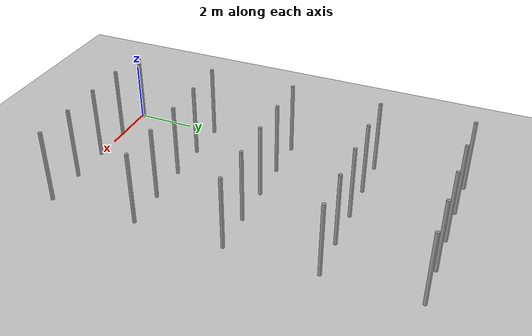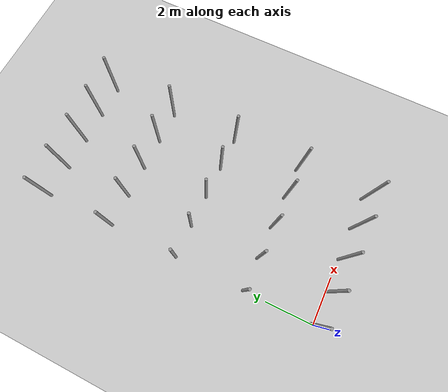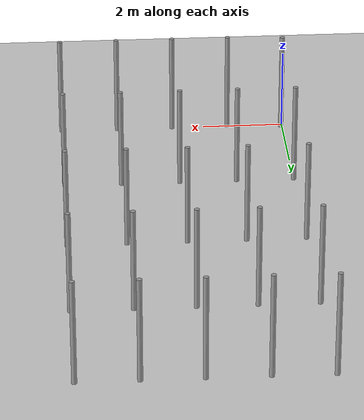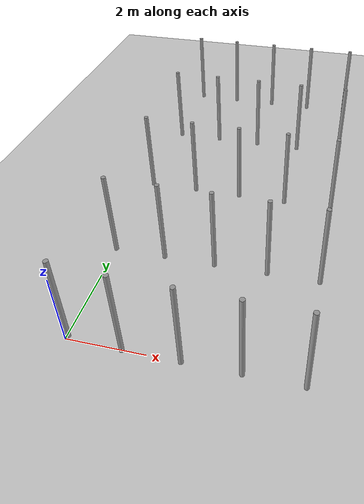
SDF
<sdf version="1.6">
 <world name="default">
  <light name="sun" type="directional">
   <pose>0 0 10 0 -0 0</pose>
   <diffuse>0.8 0.8 0.8 1</diffuse>
   <specular>0.1 0.1 0.1 1</specular>
   <attenuation>
    <range>1000</range>
    <constant>0.9</constant>
    <linear>0.01</linear>
    <quadratic>0.001</quadratic>
   </attenuation>
   <direction>-0.5 0.5 -1</direction>
  </light>
  <model name="ground_plane">
   <static>1</static>
   <link name="link">
    <collision name="collision">
     <geometry><plane><normal>0 0 1</normal><size>100 100</size></plane></geometry>
     <surface><friction><ode><mu>100</mu><mu2>50</mu2></ode></friction></surface>
    </collision>
    <visual name="visual">
     <cast_shadows>0</cast_shadows>
     <geometry><plane><normal>0 0 1</normal><size>100 100</size></plane></geometry>
     <material>
      <script><uri>file://media/materials/scripts/gazebo.material</uri><name>Gazebo/Grey</name></script>
     </material>
    </visual>
   </link>
  </model>
  <gravity>0 0 -9.8</gravity>
  <magnetic_field>6e-06 2.3e-05 -4.2e-05</magnetic_field>
  <atmosphere type="adiabatic"/>
  <physics name="default_physics" default="0" type="ode">
   <max_step_size>0.001</max_step_size>
   <real_time_factor>1</real_time_factor>
   <real_time_update_rate>1000</real_time_update_rate>
  </physics>
  <scene><ambient>0.4 0.4 0.4 1</ambient><background>0.7 0.7 0.7 1</background><shadows>1</shadows></scene>
  <spherical_coordinates>
   <surface_model>EARTH_WGS84</surface_model>
   <latitude_deg>0</latitude_deg>
   <longitude_deg>0</longitude_deg>
   <elevation>0</elevation>
   <heading_deg>0</heading_deg>
  </spherical_coordinates>
  <model name="pole_8">
   <link name="link_0">
    <inertial>
     <mass>0.0364582</mass>
     <inertia>
      <ixx>0.00312124</ixx>
      <ixy>0</ixy>
      <ixz>0</ixz>
      <iyy>0.00312124</iyy>
      <iyz>0</iyz>
      <izz>0.00016615</izz>
     </inertia>
    </inertial>
    <visual name="visual">
     <geometry><cylinder><radius>0.06</radius><length>2.5</length></cylinder></geometry>
     <material>
      <lighting>1</lighting>
      <script><uri>file://media/materials/scripts/gazebo.material</uri><name>Gazebo/Grey</name></script>
      <ambient>0.3 0.3 0.3 1</ambient>
      <diffuse>0.7 0.7 0.7 1</diffuse>
      <specular>0.01 0.01 0.01 1</specular>
      <emissive>0 0 0 1</emissive>
      <shader type="vertex"><normal_map>__default__</normal_map></shader>
     </material>
    </visual>
    <collision name="collision">
     <geometry><cylinder><radius>0.06</radius><length>2.5</length></cylinder></geometry>
     <surface>
      <friction>
       <ode><mu>1</mu><mu2>1</mu2><fdir1>0 0 0</fdir1><slip1>0</slip1><slip2>0</slip2></ode>
       <torsional>
        <coefficient>1</coefficient>
        <patch_radius>0</patch_radius>
        <surface_radius>0</surface_radius>
        <use_patch_radius>1</use_patch_radius>
        <ode><slip>0</slip></ode>
       </torsional>
      </friction>
      <bounce><restitution_coefficient>0</restitution_coefficient><threshold>1e+06</threshold></bounce>
      <contact>
       <collide_without_contact>0</collide_without_contact>
       <collide_without_contact_bitmask>1</collide_without_contact_bitmask>
       <collide_bitmask>1</collide_bitmask>
       <ode>
        <soft_cfm>0</soft_cfm>
        <soft_erp>0.2</soft_erp>
        <kp>1e+13</kp>
        <kd>1</kd>
        <max_vel>0.01</max_vel>
        <min_depth>0</min_depth>
       </ode>
       <bullet>
        <split_impulse>1</split_impulse>
        <split_impulse_penetration_threshold>-0.01</split_impulse_penetration_threshold>
        <soft_cfm>0</soft_cfm>
        <soft_erp>0.2</soft_erp>
        <kp>1e+13</kp>
        <kd>1</kd>
       </bullet>
      </contact>
     </surface>
    </collision>
   </link>
   <static>0</static>
   <pose>1.4042 0.00133 1.25 -1e-06 -0 -0.016872</pose>
  </model>
  <model name="pole_9">
   <link name="link_0">
    <inertial>
     <mass>0.0364582</mass>
     <inertia>
      <ixx>0.00312124</ixx>
      <ixy>0</ixy>
      <ixz>0</ixz>
      <iyy>0.00312124</iyy>
      <iyz>0</iyz>
      <izz>0.00016615</izz>
     </inertia>
    </inertial>
    <visual name="visual">
     <geometry><cylinder><radius>0.06</radius><length>2.5</length></cylinder></geometry>
     <material>
      <lighting>1</lighting>
      <script><uri>file://media/materials/scripts/gazebo.material</uri><name>Gazebo/Grey</name></script>
      <ambient>0.3 0.3 0.3 1</ambient>
      <diffuse>0.7 0.7 0.7 1</diffuse>
      <specular>0.01 0.01 0.01 1</specular>
      <emissive>0 0 0 1</emissive>
      <shader type="vertex"><normal_map>__default__</normal_map></shader>
     </material>
    </visual>
    <collision name="collision">
     <geometry><cylinder><radius>0.06</radius><length>2.5</length></cylinder></geometry>
     <surface>
      <friction>
       <ode><mu>1</mu><mu2>1</mu2><fdir1>0 0 0</fdir1><slip1>0</slip1><slip2>0</slip2></ode>
       <torsional>
        <coefficient>1</coefficient>
        <patch_radius>0</patch_radius>
        <surface_radius>0</surface_radius>
        <use_patch_radius>1</use_patch_radius>
        <ode><slip>0</slip></ode>
       </torsional>
      </friction>
      <bounce><restitution_coefficient>0</restitution_coefficient><threshold>1e+06</threshold></bounce>
      <contact>
       <collide_without_contact>0</collide_without_contact>
       <collide_without_contact_bitmask>1</collide_without_contact_bitmask>
       <collide_bitmask>1</collide_bitmask>
       <ode>
        <soft_cfm>0</soft_cfm>
        <soft_erp>0.2</soft_erp>
        <kp>1e+13</kp>
        <kd>1</kd>
        <max_vel>0.01</max_vel>
        <min_depth>0</min_depth>
       </ode>
       <bullet>
        <split_impulse>1</split_impulse>
        <split_impulse_penetration_threshold>-0.01</split_impulse_penetration_threshold>
        <soft_cfm>0</soft_cfm>
        <soft_erp>0.2</soft_erp>
        <kp>1e+13</kp>
        <kd>1</kd>
       </bullet>
      </contact>
     </surface>
    </collision>
   </link>
   <static>0</static>
   <pose>2.808 0.001462 1.25 -0 -1e-06 -0.034867</pose>
  </model>
  <model name="pole_10">
   <link name="link_0">
    <inertial>
     <mass>0.0364582</mass>
     <inertia>
      <ixx>0.00312124</ixx>
      <ixy>0</ixy>
      <ixz>0</ixz>
      <iyy>0.00312124</iyy>
      <iyz>0</iyz>
      <izz>0.00016615</izz>
     </inertia>
    </inertial>
    <visual name="visual">
     <geometry><cylinder><radius>0.06</radius><length>2.5</length></cylinder></geometry>
     <material>
      <lighting>1</lighting>
      <script><uri>file://media/materials/scripts/gazebo.material</uri><name>Gazebo/Grey</name></script>
      <ambient>0.3 0.3 0.3 1</ambient>
      <diffuse>0.7 0.7 0.7 1</diffuse>
      <specular>0.01 0.01 0.01 1</specular>
      <emissive>0 0 0 1</emissive>
      <shader type="vertex"><normal_map>__default__</normal_map></shader>
     </material>
    </visual>
    <collision name="collision">
     <geometry><cylinder><radius>0.06</radius><length>2.5</length></cylinder></geometry>
     <surface>
      <friction>
       <ode><mu>1</mu><mu2>1</mu2><fdir1>0 0 0</fdir1><slip1>0</slip1><slip2>0</slip2></ode>
       <torsional>
        <coefficient>1</coefficient>
        <patch_radius>0</patch_radius>
        <surface_radius>0</surface_radius>
        <use_patch_radius>1</use_patch_radius>
        <ode><slip>0</slip></ode>
       </torsional>
      </friction>
      <bounce><restitution_coefficient>0</restitution_coefficient><threshold>1e+06</threshold></bounce>
      <contact>
       <collide_without_contact>0</collide_without_contact>
       <collide_without_contact_bitmask>1</collide_without_contact_bitmask>
       <collide_bitmask>1</collide_bitmask>
       <ode>
        <soft_cfm>0</soft_cfm>
        <soft_erp>0.2</soft_erp>
        <kp>1e+13</kp>
        <kd>1</kd>
        <max_vel>0.01</max_vel>
        <min_depth>0</min_depth>
       </ode>
       <bullet>
        <split_impulse>1</split_impulse>
        <split_impulse_penetration_threshold>-0.01</split_impulse_penetration_threshold>
        <soft_cfm>0</soft_cfm>
        <soft_erp>0.2</soft_erp>
        <kp>1e+13</kp>
        <kd>1</kd>
       </bullet>
      </contact>
     </surface>
    </collision>
   </link>
   <static>0</static>
   <pose>4.20395 0.001436 1.24999 -1e-06 1e-06 -0.019667</pose>
  </model>
  <model name="pole_11">
   <link name="link_0">
    <inertial>
     <mass>0.0364582</mass>
     <inertia>
      <ixx>0.00312124</ixx>
      <ixy>0</ixy>
      <ixz>0</ixz>
      <iyy>0.00312124</iyy>
      <iyz>0</iyz>
      <izz>0.00016615</izz>
     </inertia>
    </inertial>
    <visual name="visual">
     <geometry><cylinder><radius>0.06</radius><length>2.5</length></cylinder></geometry>
     <material>
      <lighting>1</lighting>
      <script><uri>file://media/materials/scripts/gazebo.material</uri><name>Gazebo/Grey</name></script>
      <ambient>0.3 0.3 0.3 1</ambient>
      <diffuse>0.7 0.7 0.7 1</diffuse>
      <specular>0.01 0.01 0.01 1</specular>
      <emissive>0 0 0 1</emissive>
      <shader type="vertex"><normal_map>__default__</normal_map></shader>
     </material>
    </visual>
    <collision name="collision">
     <geometry><cylinder><radius>0.06</radius><length>2.5</length></cylinder></geometry>
     <surface>
      <friction>
       <ode><mu>1</mu><mu2>1</mu2><fdir1>0 0 0</fdir1><slip1>0</slip1><slip2>0</slip2></ode>
       <torsional>
        <coefficient>1</coefficient>
        <patch_radius>0</patch_radius>
        <surface_radius>0</surface_radius>
        <use_patch_radius>1</use_patch_radius>
        <ode><slip>0</slip></ode>
       </torsional>
      </friction>
      <bounce><restitution_coefficient>0</restitution_coefficient><threshold>1e+06</threshold></bounce>
      <contact>
       <collide_without_contact>0</collide_without_contact>
       <collide_without_contact_bitmask>1</collide_without_contact_bitmask>
       <collide_bitmask>1</collide_bitmask>
       <ode>
        <soft_cfm>0</soft_cfm>
        <soft_erp>0.2</soft_erp>
        <kp>1e+13</kp>
        <kd>1</kd>
        <max_vel>0.01</max_vel>
        <min_depth>0</min_depth>
       </ode>
       <bullet>
        <split_impulse>1</split_impulse>
        <split_impulse_penetration_threshold>-0.01</split_impulse_penetration_threshold>
        <soft_cfm>0</soft_cfm>
        <soft_erp>0.2</soft_erp>
        <kp>1e+13</kp>
        <kd>1</kd>
       </bullet>
      </contact>
     </surface>
    </collision>
   </link>
   <static>0</static>
   <pose>5.6162 0.001241 1.25 -1e-06 -1e-06 -0.018142</pose>
  </model>
  <model name="pole_11_clone">
   <link name="link_0">
    <inertial>
     <mass>0.0364582</mass>
     <inertia>
      <ixx>0.00312124</ixx>
      <ixy>0</ixy>
      <ixz>0</ixz>
      <iyy>0.00312124</iyy>
      <iyz>0</iyz>
      <izz>0.00016615</izz>
     </inertia>
    </inertial>
    <visual name="visual">
     <geometry><cylinder><radius>0.06</radius><length>2.5</length></cylinder></geometry>
     <material>
      <lighting>1</lighting>
      <script><uri>file://media/materials/scripts/gazebo.material</uri><name>Gazebo/Grey</name></script>
      <ambient>0.3 0.3 0.3 1</ambient>
      <diffuse>0.7 0.7 0.7 1</diffuse>
      <specular>0.01 0.01 0.01 1</specular>
      <emissive>0 0 0 1</emissive>
      <shader type="vertex"><normal_map>__default__</normal_map></shader>
     </material>
    </visual>
    <collision name="collision">
     <geometry><cylinder><radius>0.06</radius><length>2.5</length></cylinder></geometry>
     <surface>
      <friction>
       <ode><mu>1</mu><mu2>1</mu2><fdir1>0 0 0</fdir1><slip1>0</slip1><slip2>0</slip2></ode>
       <torsional>
        <coefficient>1</coefficient>
        <patch_radius>0</patch_radius>
        <surface_radius>0</surface_radius>
        <use_patch_radius>1</use_patch_radius>
        <ode><slip>0</slip></ode>
       </torsional>
      </friction>
      <bounce><restitution_coefficient>0</restitution_coefficient><threshold>1e+06</threshold></bounce>
      <contact>
       <collide_without_contact>0</collide_without_contact>
       <collide_without_contact_bitmask>1</collide_without_contact_bitmask>
       <collide_bitmask>1</collide_bitmask>
       <ode>
        <soft_cfm>0</soft_cfm>
        <soft_erp>0.2</soft_erp>
        <kp>1e+13</kp>
        <kd>1</kd>
        <max_vel>0.01</max_vel>
        <min_depth>0</min_depth>
       </ode>
       <bullet>
        <split_impulse>1</split_impulse>
        <split_impulse_penetration_threshold>-0.01</split_impulse_penetration_threshold>
        <soft_cfm>0</soft_cfm>
        <soft_erp>0.2</soft_erp>
        <kp>1e+13</kp>
        <kd>1</kd>
       </bullet>
      </contact>
     </surface>
    </collision>
   </link>
   <static>0</static>
   <pose>0.000689 2.98366 1.24999 -1e-06 -0 -0.026064</pose>
  </model>
  <model name="pole">
   <link name="link_0">
    <inertial>
     <mass>0.0364582</mass>
     <inertia>
      <ixx>0.00312124</ixx>
      <ixy>0</ixy>
      <ixz>0</ixz>
      <iyy>0.00312124</iyy>
      <iyz>0</iyz>
      <izz>0.00016615</izz>
     </inertia>
    </inertial>
    <visual name="visual">
     <geometry><cylinder><radius>0.06</radius><length>2.5</length></cylinder></geometry>
     <material>
      <lighting>1</lighting>
      <script><uri>file://media/materials/scripts/gazebo.material</uri><name>Gazebo/Grey</name></script>
      <ambient>0.3 0.3 0.3 1</ambient>
      <diffuse>0.7 0.7 0.7 1</diffuse>
      <specular>0.01 0.01 0.01 1</specular>
      <emissive>0 0 0 1</emissive>
      <shader type="vertex"><normal_map>__default__</normal_map></shader>
     </material>
    </visual>
    <collision name="collision">
     <geometry><cylinder><radius>0.06</radius><length>2.5</length></cylinder></geometry>
     <surface>
      <friction>
       <ode><mu>1</mu><mu2>1</mu2><fdir1>0 0 0</fdir1><slip1>0</slip1><slip2>0</slip2></ode>
       <torsional>
        <coefficient>1</coefficient>
        <patch_radius>0</patch_radius>
        <surface_radius>0</surface_radius>
        <use_patch_radius>1</use_patch_radius>
        <ode><slip>0</slip></ode>
       </torsional>
      </friction>
      <bounce><restitution_coefficient>0</restitution_coefficient><threshold>1e+06</threshold></bounce>
      <contact>
       <collide_without_contact>0</collide_without_contact>
       <collide_without_contact_bitmask>1</collide_without_contact_bitmask>
       <collide_bitmask>1</collide_bitmask>
       <ode>
        <soft_cfm>0</soft_cfm>
        <soft_erp>0.2</soft_erp>
        <kp>1e+13</kp>
        <kd>1</kd>
        <max_vel>0.01</max_vel>
        <min_depth>0</min_depth>
       </ode>
       <bullet>
        <split_impulse>1</split_impulse>
        <split_impulse_penetration_threshold>-0.01</split_impulse_penetration_threshold>
        <soft_cfm>0</soft_cfm>
        <soft_erp>0.2</soft_erp>
        <kp>1e+13</kp>
        <kd>1</kd>
       </bullet>
      </contact>
     </surface>
    </collision>
   </link>
   <static>0</static>
   <pose>0.006671 5.96106 1.24999 0 1e-06 -0.013092</pose>
  </model>
  <model name="pole_0">
   <link name="link_0">
    <inertial>
     <mass>0.0364582</mass>
     <inertia>
      <ixx>0.00312124</ixx>
      <ixy>0</ixy>
      <ixz>0</ixz>
      <iyy>0.00312124</iyy>
      <iyz>0</iyz>
      <izz>0.00016615</izz>
     </inertia>
    </inertial>
    <visual name="visual">
     <geometry><cylinder><radius>0.06</radius><length>2.5</length></cylinder></geometry>
     <material>
      <lighting>1</lighting>
      <script><uri>file://media/materials/scripts/gazebo.material</uri><name>Gazebo/Grey</name></script>
      <ambient>0.3 0.3 0.3 1</ambient>
      <diffuse>0.7 0.7 0.7 1</diffuse>
      <specular>0.01 0.01 0.01 1</specular>
      <emissive>0 0 0 1</emissive>
      <shader type="vertex"><normal_map>__default__</normal_map></shader>
     </material>
    </visual>
    <collision name="collision">
     <geometry><cylinder><radius>0.06</radius><length>2.5</length></cylinder></geometry>
     <surface>
      <friction>
       <ode><mu>1</mu><mu2>1</mu2><fdir1>0 0 0</fdir1><slip1>0</slip1><slip2>0</slip2></ode>
       <torsional>
        <coefficient>1</coefficient>
        <patch_radius>0</patch_radius>
        <surface_radius>0</surface_radius>
        <use_patch_radius>1</use_patch_radius>
        <ode><slip>0</slip></ode>
       </torsional>
      </friction>
      <bounce><restitution_coefficient>0</restitution_coefficient><threshold>1e+06</threshold></bounce>
      <contact>
       <collide_without_contact>0</collide_without_contact>
       <collide_without_contact_bitmask>1</collide_without_contact_bitmask>
       <collide_bitmask>1</collide_bitmask>
       <ode>
        <soft_cfm>0</soft_cfm>
        <soft_erp>0.2</soft_erp>
        <kp>1e+13</kp>
        <kd>1</kd>
        <max_vel>0.01</max_vel>
        <min_depth>0</min_depth>
       </ode>
       <bullet>
        <split_impulse>1</split_impulse>
        <split_impulse_penetration_threshold>-0.01</split_impulse_penetration_threshold>
        <soft_cfm>0</soft_cfm>
        <soft_erp>0.2</soft_erp>
        <kp>1e+13</kp>
        <kd>1</kd>
       </bullet>
      </contact>
     </surface>
    </collision>
   </link>
   <static>0</static>
   <pose>0.013472 8.94119 1.24999 0 0 -0.015587</pose>
  </model>
  <model name="pole_1">
   <link name="link_0">
    <inertial>
     <mass>0.0364582</mass>
     <inertia>
      <ixx>0.00312124</ixx>
      <ixy>0</ixy>
      <ixz>0</ixz>
      <iyy>0.00312124</iyy>
      <iyz>0</iyz>
      <izz>0.00016615</izz>
     </inertia>
    </inertial>
    <visual name="visual">
     <geometry><cylinder><radius>0.06</radius><length>2.5</length></cylinder></geometry>
     <material>
      <lighting>1</lighting>
      <script><uri>file://media/materials/scripts/gazebo.material</uri><name>Gazebo/Grey</name></script>
      <ambient>0.3 0.3 0.3 1</ambient>
      <diffuse>0.7 0.7 0.7 1</diffuse>
      <specular>0.01 0.01 0.01 1</specular>
      <emissive>0 0 0 1</emissive>
      <shader type="vertex"><normal_map>__default__</normal_map></shader>
     </material>
    </visual>
    <collision name="collision">
     <geometry><cylinder><radius>0.06</radius><length>2.5</length></cylinder></geometry>
     <surface>
      <friction>
       <ode><mu>1</mu><mu2>1</mu2><fdir1>0 0 0</fdir1><slip1>0</slip1><slip2>0</slip2></ode>
       <torsional>
        <coefficient>1</coefficient>
        <patch_radius>0</patch_radius>
        <surface_radius>0</surface_radius>
        <use_patch_radius>1</use_patch_radius>
        <ode><slip>0</slip></ode>
       </torsional>
      </friction>
      <bounce><restitution_coefficient>0</restitution_coefficient><threshold>1e+06</threshold></bounce>
      <contact>
       <collide_without_contact>0</collide_without_contact>
       <collide_without_contact_bitmask>1</collide_without_contact_bitmask>
       <collide_bitmask>1</collide_bitmask>
       <ode>
        <soft_cfm>0</soft_cfm>
        <soft_erp>0.2</soft_erp>
        <kp>1e+13</kp>
        <kd>1</kd>
        <max_vel>0.01</max_vel>
        <min_depth>0</min_depth>
       </ode>
       <bullet>
        <split_impulse>1</split_impulse>
        <split_impulse_penetration_threshold>-0.01</split_impulse_penetration_threshold>
        <soft_cfm>0</soft_cfm>
        <soft_erp>0.2</soft_erp>
        <kp>1e+13</kp>
        <kd>1</kd>
       </bullet>
      </contact>
     </surface>
    </collision>
   </link>
   <static>0</static>
   <pose>-0.00814 11.9211 1.24999 -1e-06 -2e-06 -0.016232</pose>
  </model>
  <model name="pole_2">
   <link name="link_0">
    <inertial>
     <mass>0.0364582</mass>
     <inertia>
      <ixx>0.00312124</ixx>
      <ixy>0</ixy>
      <ixz>0</ixz>
      <iyy>0.00312124</iyy>
      <iyz>0</iyz>
      <izz>0.00016615</izz>
     </inertia>
    </inertial>
    <visual name="visual">
     <geometry><cylinder><radius>0.06</radius><length>2.5</length></cylinder></geometry>
     <material>
      <lighting>1</lighting>
      <script><uri>file://media/materials/scripts/gazebo.material</uri><name>Gazebo/Grey</name></script>
      <ambient>0.3 0.3 0.3 1</ambient>
      <diffuse>0.7 0.7 0.7 1</diffuse>
      <specular>0.01 0.01 0.01 1</specular>
      <emissive>0 0 0 1</emissive>
      <shader type="vertex"><normal_map>__default__</normal_map></shader>
     </material>
    </visual>
    <collision name="collision">
     <geometry><cylinder><radius>0.06</radius><length>2.5</length></cylinder></geometry>
     <surface>
      <friction>
       <ode><mu>1</mu><mu2>1</mu2><fdir1>0 0 0</fdir1><slip1>0</slip1><slip2>0</slip2></ode>
       <torsional>
        <coefficient>1</coefficient>
        <patch_radius>0</patch_radius>
        <surface_radius>0</surface_radius>
        <use_patch_radius>1</use_patch_radius>
        <ode><slip>0</slip></ode>
       </torsional>
      </friction>
      <bounce><restitution_coefficient>0</restitution_coefficient><threshold>1e+06</threshold></bounce>
      <contact>
       <collide_without_contact>0</collide_without_contact>
       <collide_without_contact_bitmask>1</collide_without_contact_bitmask>
       <collide_bitmask>1</collide_bitmask>
       <ode>
        <soft_cfm>0</soft_cfm>
        <soft_erp>0.2</soft_erp>
        <kp>1e+13</kp>
        <kd>1</kd>
        <max_vel>0.01</max_vel>
        <min_depth>0</min_depth>
       </ode>
       <bullet>
        <split_impulse>1</split_impulse>
        <split_impulse_penetration_threshold>-0.01</split_impulse_penetration_threshold>
        <soft_cfm>0</soft_cfm>
        <soft_erp>0.2</soft_erp>
        <kp>1e+13</kp>
        <kd>1</kd>
       </bullet>
      </contact>
     </surface>
    </collision>
   </link>
   <static>0</static>
   <pose>0.034201 0.09421 1.25 -1e-06 -1e-06 0.046889</pose>
  </model>
  <model name="pole_3">
   <link name="link_0">
    <inertial>
     <mass>0.0364582</mass>
     <inertia>
      <ixx>0.00312124</ixx>
      <ixy>0</ixy>
      <ixz>0</ixz>
      <iyy>0.00312124</iyy>
      <iyz>0</iyz>
      <izz>0.00016615</izz>
     </inertia>
    </inertial>
    <visual name="visual">
     <geometry><cylinder><radius>0.06</radius><length>2.5</length></cylinder></geometry>
     <material>
      <lighting>1</lighting>
      <script><uri>file://media/materials/scripts/gazebo.material</uri><name>Gazebo/Grey</name></script>
      <ambient>0.3 0.3 0.3 1</ambient>
      <diffuse>0.7 0.7 0.7 1</diffuse>
      <specular>0.01 0.01 0.01 1</specular>
      <emissive>0 0 0 1</emissive>
      <shader type="vertex"><normal_map>__default__</normal_map></shader>
     </material>
    </visual>
    <collision name="collision">
     <geometry><cylinder><radius>0.06</radius><length>2.5</length></cylinder></geometry>
     <surface>
      <friction>
       <ode><mu>1</mu><mu2>1</mu2><fdir1>0 0 0</fdir1><slip1>0</slip1><slip2>0</slip2></ode>
       <torsional>
        <coefficient>1</coefficient>
        <patch_radius>0</patch_radius>
        <surface_radius>0</surface_radius>
        <use_patch_radius>1</use_patch_radius>
        <ode><slip>0</slip></ode>
       </torsional>
      </friction>
      <bounce><restitution_coefficient>0</restitution_coefficient><threshold>1e+06</threshold></bounce>
      <contact>
       <collide_without_contact>0</collide_without_contact>
       <collide_without_contact_bitmask>1</collide_without_contact_bitmask>
       <collide_bitmask>1</collide_bitmask>
       <ode>
        <soft_cfm>0</soft_cfm>
        <soft_erp>0.2</soft_erp>
        <kp>1e+13</kp>
        <kd>1</kd>
        <max_vel>0.01</max_vel>
        <min_depth>0</min_depth>
       </ode>
       <bullet>
        <split_impulse>1</split_impulse>
        <split_impulse_penetration_threshold>-0.01</split_impulse_penetration_threshold>
        <soft_cfm>0</soft_cfm>
        <soft_erp>0.2</soft_erp>
        <kp>1e+13</kp>
        <kd>1</kd>
       </bullet>
      </contact>
     </surface>
    </collision>
   </link>
   <static>0</static>
   <pose>1.4047 2.98102 1.24999 0 1e-06 -0.012816</pose>
  </model>
  <model name="pole_5">
   <link name="link_0">
    <inertial>
     <mass>0.0364582</mass>
     <inertia>
      <ixx>0.00312124</ixx>
      <ixy>0</ixy>
      <ixz>0</ixz>
      <iyy>0.00312124</iyy>
      <iyz>0</iyz>
      <izz>0.00016615</izz>
     </inertia>
    </inertial>
    <visual name="visual">
     <geometry><cylinder><radius>0.06</radius><length>2.5</length></cylinder></geometry>
     <material>
      <lighting>1</lighting>
      <script><uri>file://media/materials/scripts/gazebo.material</uri><name>Gazebo/Grey</name></script>
      <ambient>0.3 0.3 0.3 1</ambient>
      <diffuse>0.7 0.7 0.7 1</diffuse>
      <specular>0.01 0.01 0.01 1</specular>
      <emissive>0 0 0 1</emissive>
      <shader type="vertex"><normal_map>__default__</normal_map></shader>
     </material>
    </visual>
    <collision name="collision">
     <geometry><cylinder><radius>0.06</radius><length>2.5</length></cylinder></geometry>
     <surface>
      <friction>
       <ode><mu>1</mu><mu2>1</mu2><fdir1>0 0 0</fdir1><slip1>0</slip1><slip2>0</slip2></ode>
       <torsional>
        <coefficient>1</coefficient>
        <patch_radius>0</patch_radius>
        <surface_radius>0</surface_radius>
        <use_patch_radius>1</use_patch_radius>
        <ode><slip>0</slip></ode>
       </torsional>
      </friction>
      <bounce><restitution_coefficient>0</restitution_coefficient><threshold>1e+06</threshold></bounce>
      <contact>
       <collide_without_contact>0</collide_without_contact>
       <collide_without_contact_bitmask>1</collide_without_contact_bitmask>
       <collide_bitmask>1</collide_bitmask>
       <ode>
        <soft_cfm>0</soft_cfm>
        <soft_erp>0.2</soft_erp>
        <kp>1e+13</kp>
        <kd>1</kd>
        <max_vel>0.01</max_vel>
        <min_depth>0</min_depth>
       </ode>
       <bullet>
        <split_impulse>1</split_impulse>
        <split_impulse_penetration_threshold>-0.01</split_impulse_penetration_threshold>
        <soft_cfm>0</soft_cfm>
        <soft_erp>0.2</soft_erp>
        <kp>1e+13</kp>
        <kd>1</kd>
       </bullet>
      </contact>
     </surface>
    </collision>
   </link>
   <static>0</static>
   <pose>2.7958 2.98095 1.24999 -1e-06 -0 -0.011488</pose>
  </model>
  <model name="pole_6">
   <link name="link_0">
    <inertial>
     <mass>0.0364582</mass>
     <inertia>
      <ixx>0.00312124</ixx>
      <ixy>0</ixy>
      <ixz>0</ixz>
      <iyy>0.00312124</iyy>
      <iyz>0</iyz>
      <izz>0.00016615</izz>
     </inertia>
    </inertial>
    <visual name="visual">
     <geometry><cylinder><radius>0.06</radius><length>2.5</length></cylinder></geometry>
     <material>
      <lighting>1</lighting>
      <script><uri>file://media/materials/scripts/gazebo.material</uri><name>Gazebo/Grey</name></script>
      <ambient>0.3 0.3 0.3 1</ambient>
      <diffuse>0.7 0.7 0.7 1</diffuse>
      <specular>0.01 0.01 0.01 1</specular>
      <emissive>0 0 0 1</emissive>
      <shader type="vertex"><normal_map>__default__</normal_map></shader>
     </material>
    </visual>
    <collision name="collision">
     <geometry><cylinder><radius>0.06</radius><length>2.5</length></cylinder></geometry>
     <surface>
      <friction>
       <ode><mu>1</mu><mu2>1</mu2><fdir1>0 0 0</fdir1><slip1>0</slip1><slip2>0</slip2></ode>
       <torsional>
        <coefficient>1</coefficient>
        <patch_radius>0</patch_radius>
        <surface_radius>0</surface_radius>
        <use_patch_radius>1</use_patch_radius>
        <ode><slip>0</slip></ode>
       </torsional>
      </friction>
      <bounce><restitution_coefficient>0</restitution_coefficient><threshold>1e+06</threshold></bounce>
      <contact>
       <collide_without_contact>0</collide_without_contact>
       <collide_without_contact_bitmask>1</collide_without_contact_bitmask>
       <collide_bitmask>1</collide_bitmask>
       <ode>
        <soft_cfm>0</soft_cfm>
        <soft_erp>0.2</soft_erp>
        <kp>1e+13</kp>
        <kd>1</kd>
        <max_vel>0.01</max_vel>
        <min_depth>0</min_depth>
       </ode>
       <bullet>
        <split_impulse>1</split_impulse>
        <split_impulse_penetration_threshold>-0.01</split_impulse_penetration_threshold>
        <soft_cfm>0</soft_cfm>
        <soft_erp>0.2</soft_erp>
        <kp>1e+13</kp>
        <kd>1</kd>
       </bullet>
      </contact>
     </surface>
    </collision>
   </link>
   <static>0</static>
   <pose>4.22238 2.98093 1.25 -1e-06 -1e-06 -0.011853</pose>
  </model>
  <model name="pole_7">
   <link name="link_0">
    <inertial>
     <mass>0.0364582</mass>
     <inertia>
      <ixx>0.00312124</ixx>
      <ixy>0</ixy>
      <ixz>0</ixz>
      <iyy>0.00312124</iyy>
      <iyz>0</iyz>
      <izz>0.00016615</izz>
     </inertia>
    </inertial>
    <visual name="visual">
     <geometry><cylinder><radius>0.06</radius><length>2.5</length></cylinder></geometry>
     <material>
      <lighting>1</lighting>
      <script><uri>file://media/materials/scripts/gazebo.material</uri><name>Gazebo/Grey</name></script>
      <ambient>0.3 0.3 0.3 1</ambient>
      <diffuse>0.7 0.7 0.7 1</diffuse>
      <specular>0.01 0.01 0.01 1</specular>
      <emissive>0 0 0 1</emissive>
      <shader type="vertex"><normal_map>__default__</normal_map></shader>
     </material>
    </visual>
    <collision name="collision">
     <geometry><cylinder><radius>0.06</radius><length>2.5</length></cylinder></geometry>
     <surface>
      <friction>
       <ode><mu>1</mu><mu2>1</mu2><fdir1>0 0 0</fdir1><slip1>0</slip1><slip2>0</slip2></ode>
       <torsional>
        <coefficient>1</coefficient>
        <patch_radius>0</patch_radius>
        <surface_radius>0</surface_radius>
        <use_patch_radius>1</use_patch_radius>
        <ode><slip>0</slip></ode>
       </torsional>
      </friction>
      <bounce><restitution_coefficient>0</restitution_coefficient><threshold>1e+06</threshold></bounce>
      <contact>
       <collide_without_contact>0</collide_without_contact>
       <collide_without_contact_bitmask>1</collide_without_contact_bitmask>
       <collide_bitmask>1</collide_bitmask>
       <ode>
        <soft_cfm>0</soft_cfm>
        <soft_erp>0.2</soft_erp>
        <kp>1e+13</kp>
        <kd>1</kd>
        <max_vel>0.01</max_vel>
        <min_depth>0</min_depth>
       </ode>
       <bullet>
        <split_impulse>1</split_impulse>
        <split_impulse_penetration_threshold>-0.01</split_impulse_penetration_threshold>
        <soft_cfm>0</soft_cfm>
        <soft_erp>0.2</soft_erp>
        <kp>1e+13</kp>
        <kd>1</kd>
       </bullet>
      </contact>
     </surface>
    </collision>
   </link>
   <static>0</static>
   <pose>5.60732 2.981 1.25 -1e-06 -1e-06 -0.012064</pose>
  </model>
  <model name="pole_12">
   <link name="link_0">
    <inertial>
     <mass>0.0364582</mass>
     <inertia>
      <ixx>0.00312124</ixx>
      <ixy>0</ixy>
      <ixz>0</ixz>
      <iyy>0.00312124</iyy>
      <iyz>0</iyz>
      <izz>0.00016615</izz>
     </inertia>
    </inertial>
    <visual name="visual">
     <geometry><cylinder><radius>0.06</radius><length>2.5</length></cylinder></geometry>
     <material>
      <lighting>1</lighting>
      <script><uri>file://media/materials/scripts/gazebo.material</uri><name>Gazebo/Grey</name></script>
      <ambient>0.3 0.3 0.3 1</ambient>
      <diffuse>0.7 0.7 0.7 1</diffuse>
      <specular>0.01 0.01 0.01 1</specular>
      <emissive>0 0 0 1</emissive>
      <shader type="vertex"><normal_map>__default__</normal_map></shader>
     </material>
    </visual>
    <collision name="collision">
     <geometry><cylinder><radius>0.06</radius><length>2.5</length></cylinder></geometry>
     <surface>
      <friction>
       <ode><mu>1</mu><mu2>1</mu2><fdir1>0 0 0</fdir1><slip1>0</slip1><slip2>0</slip2></ode>
       <torsional>
        <coefficient>1</coefficient>
        <patch_radius>0</patch_radius>
        <surface_radius>0</surface_radius>
        <use_patch_radius>1</use_patch_radius>
        <ode><slip>0</slip></ode>
       </torsional>
      </friction>
      <bounce><restitution_coefficient>0</restitution_coefficient><threshold>1e+06</threshold></bounce>
      <contact>
       <collide_without_contact>0</collide_without_contact>
       <collide_without_contact_bitmask>1</collide_without_contact_bitmask>
       <collide_bitmask>1</collide_bitmask>
       <ode>
        <soft_cfm>0</soft_cfm>
        <soft_erp>0.2</soft_erp>
        <kp>1e+13</kp>
        <kd>1</kd>
        <max_vel>0.01</max_vel>
        <min_depth>0</min_depth>
       </ode>
       <bullet>
        <split_impulse>1</split_impulse>
        <split_impulse_penetration_threshold>-0.01</split_impulse_penetration_threshold>
        <soft_cfm>0</soft_cfm>
        <soft_erp>0.2</soft_erp>
        <kp>1e+13</kp>
        <kd>1</kd>
       </bullet>
      </contact>
     </surface>
    </collision>
   </link>
   <static>0</static>
   <pose>1.41358 5.96095 1.25 -1e-06 1e-06 -0.009248</pose>
  </model>
  <model name="pole_13">
   <link name="link_0">
    <inertial>
     <mass>0.0364582</mass>
     <inertia>
      <ixx>0.00312124</ixx>
      <ixy>0</ixy>
      <ixz>0</ixz>
      <iyy>0.00312124</iyy>
      <iyz>0</iyz>
      <izz>0.00016615</izz>
     </inertia>
    </inertial>
    <visual name="visual">
     <geometry><cylinder><radius>0.06</radius><length>2.5</length></cylinder></geometry>
     <material>
      <lighting>1</lighting>
      <script><uri>file://media/materials/scripts/gazebo.material</uri><name>Gazebo/Grey</name></script>
      <ambient>0.3 0.3 0.3 1</ambient>
      <diffuse>0.7 0.7 0.7 1</diffuse>
      <specular>0.01 0.01 0.01 1</specular>
      <emissive>0 0 0 1</emissive>
      <shader type="vertex"><normal_map>__default__</normal_map></shader>
     </material>
    </visual>
    <collision name="collision">
     <geometry><cylinder><radius>0.06</radius><length>2.5</length></cylinder></geometry>
     <surface>
      <friction>
       <ode><mu>1</mu><mu2>1</mu2><fdir1>0 0 0</fdir1><slip1>0</slip1><slip2>0</slip2></ode>
       <torsional>
        <coefficient>1</coefficient>
        <patch_radius>0</patch_radius>
        <surface_radius>0</surface_radius>
        <use_patch_radius>1</use_patch_radius>
        <ode><slip>0</slip></ode>
       </torsional>
      </friction>
      <bounce><restitution_coefficient>0</restitution_coefficient><threshold>1e+06</threshold></bounce>
      <contact>
       <collide_without_contact>0</collide_without_contact>
       <collide_without_contact_bitmask>1</collide_without_contact_bitmask>
       <collide_bitmask>1</collide_bitmask>
       <ode>
        <soft_cfm>0</soft_cfm>
        <soft_erp>0.2</soft_erp>
        <kp>1e+13</kp>
        <kd>1</kd>
        <max_vel>0.01</max_vel>
        <min_depth>0</min_depth>
       </ode>
       <bullet>
        <split_impulse>1</split_impulse>
        <split_impulse_penetration_threshold>-0.01</split_impulse_penetration_threshold>
        <soft_cfm>0</soft_cfm>
        <soft_erp>0.2</soft_erp>
        <kp>1e+13</kp>
        <kd>1</kd>
       </bullet>
      </contact>
     </surface>
    </collision>
   </link>
   <static>0</static>
   <pose>2.80798 5.96092 1.24999 -1e-06 -2e-06 -0.009667</pose>
  </model>
  <model name="pole_14">
   <link name="link_0">
    <inertial>
     <mass>0.0364582</mass>
     <inertia>
      <ixx>0.00312124</ixx>
      <ixy>0</ixy>
      <ixz>0</ixz>
      <iyy>0.00312124</iyy>
      <iyz>0</iyz>
      <izz>0.00016615</izz>
     </inertia>
    </inertial>
    <visual name="visual">
     <geometry><cylinder><radius>0.06</radius><length>2.5</length></cylinder></geometry>
     <material>
      <lighting>1</lighting>
      <script><uri>file://media/materials/scripts/gazebo.material</uri><name>Gazebo/Grey</name></script>
      <ambient>0.3 0.3 0.3 1</ambient>
      <diffuse>0.7 0.7 0.7 1</diffuse>
      <specular>0.01 0.01 0.01 1</specular>
      <emissive>0 0 0 1</emissive>
      <shader type="vertex"><normal_map>__default__</normal_map></shader>
     </material>
    </visual>
    <collision name="collision">
     <geometry><cylinder><radius>0.06</radius><length>2.5</length></cylinder></geometry>
     <surface>
      <friction>
       <ode><mu>1</mu><mu2>1</mu2><fdir1>0 0 0</fdir1><slip1>0</slip1><slip2>0</slip2></ode>
       <torsional>
        <coefficient>1</coefficient>
        <patch_radius>0</patch_radius>
        <surface_radius>0</surface_radius>
        <use_patch_radius>1</use_patch_radius>
        <ode><slip>0</slip></ode>
       </torsional>
      </friction>
      <bounce><restitution_coefficient>0</restitution_coefficient><threshold>1e+06</threshold></bounce>
      <contact>
       <collide_without_contact>0</collide_without_contact>
       <collide_without_contact_bitmask>1</collide_without_contact_bitmask>
       <collide_bitmask>1</collide_bitmask>
       <ode>
        <soft_cfm>0</soft_cfm>
        <soft_erp>0.2</soft_erp>
        <kp>1e+13</kp>
        <kd>1</kd>
        <max_vel>0.01</max_vel>
        <min_depth>0</min_depth>
       </ode>
       <bullet>
        <split_impulse>1</split_impulse>
        <split_impulse_penetration_threshold>-0.01</split_impulse_penetration_threshold>
        <soft_cfm>0</soft_cfm>
        <soft_erp>0.2</soft_erp>
        <kp>1e+13</kp>
        <kd>1</kd>
       </bullet>
      </contact>
     </surface>
    </collision>
   </link>
   <static>0</static>
   <pose>4.21948 5.96089 1.24999 0 -1e-06 -0.009621</pose>
  </model>
  <model name="pole_15">
   <link name="link_0">
    <inertial>
     <mass>0.0364582</mass>
     <inertia>
      <ixx>0.00312124</ixx>
      <ixy>0</ixy>
      <ixz>0</ixz>
      <iyy>0.00312124</iyy>
      <iyz>0</iyz>
      <izz>0.00016615</izz>
     </inertia>
    </inertial>
    <visual name="visual">
     <geometry><cylinder><radius>0.06</radius><length>2.5</length></cylinder></geometry>
     <material>
      <lighting>1</lighting>
      <script><uri>file://media/materials/scripts/gazebo.material</uri><name>Gazebo/Grey</name></script>
      <ambient>0.3 0.3 0.3 1</ambient>
      <diffuse>0.7 0.7 0.7 1</diffuse>
      <specular>0.01 0.01 0.01 1</specular>
      <emissive>0 0 0 1</emissive>
      <shader type="vertex"><normal_map>__default__</normal_map></shader>
     </material>
    </visual>
    <collision name="collision">
     <geometry><cylinder><radius>0.06</radius><length>2.5</length></cylinder></geometry>
     <surface>
      <friction>
       <ode><mu>1</mu><mu2>1</mu2><fdir1>0 0 0</fdir1><slip1>0</slip1><slip2>0</slip2></ode>
       <torsional>
        <coefficient>1</coefficient>
        <patch_radius>0</patch_radius>
        <surface_radius>0</surface_radius>
        <use_patch_radius>1</use_patch_radius>
        <ode><slip>0</slip></ode>
       </torsional>
      </friction>
      <bounce><restitution_coefficient>0</restitution_coefficient><threshold>1e+06</threshold></bounce>
      <contact>
       <collide_without_contact>0</collide_without_contact>
       <collide_without_contact_bitmask>1</collide_without_contact_bitmask>
       <collide_bitmask>1</collide_bitmask>
       <ode>
        <soft_cfm>0</soft_cfm>
        <soft_erp>0.2</soft_erp>
        <kp>1e+13</kp>
        <kd>1</kd>
        <max_vel>0.01</max_vel>
        <min_depth>0</min_depth>
       </ode>
       <bullet>
        <split_impulse>1</split_impulse>
        <split_impulse_penetration_threshold>-0.01</split_impulse_penetration_threshold>
        <soft_cfm>0</soft_cfm>
        <soft_erp>0.2</soft_erp>
        <kp>1e+13</kp>
        <kd>1</kd>
       </bullet>
      </contact>
     </surface>
    </collision>
   </link>
   <static>0</static>
   <pose>5.62347 5.96073 1.25 -1e-06 -1e-06 -0.008439</pose>
  </model>
  <model name="pole_16">
   <link name="link_0">
    <inertial>
     <mass>0.0364582</mass>
     <inertia>
      <ixx>0.00312124</ixx>
      <ixy>0</ixy>
      <ixz>0</ixz>
      <iyy>0.00312124</iyy>
      <iyz>0</iyz>
      <izz>0.00016615</izz>
     </inertia>
    </inertial>
    <visual name="visual">
     <geometry><cylinder><radius>0.06</radius><length>2.5</length></cylinder></geometry>
     <material>
      <lighting>1</lighting>
      <script><uri>file://media/materials/scripts/gazebo.material</uri><name>Gazebo/Grey</name></script>
      <ambient>0.3 0.3 0.3 1</ambient>
      <diffuse>0.7 0.7 0.7 1</diffuse>
      <specular>0.01 0.01 0.01 1</specular>
      <emissive>0 0 0 1</emissive>
      <shader type="vertex"><normal_map>__default__</normal_map></shader>
     </material>
    </visual>
    <collision name="collision">
     <geometry><cylinder><radius>0.06</radius><length>2.5</length></cylinder></geometry>
     <surface>
      <friction>
       <ode><mu>1</mu><mu2>1</mu2><fdir1>0 0 0</fdir1><slip1>0</slip1><slip2>0</slip2></ode>
       <torsional>
        <coefficient>1</coefficient>
        <patch_radius>0</patch_radius>
        <surface_radius>0</surface_radius>
        <use_patch_radius>1</use_patch_radius>
        <ode><slip>0</slip></ode>
       </torsional>
      </friction>
      <bounce><restitution_coefficient>0</restitution_coefficient><threshold>1e+06</threshold></bounce>
      <contact>
       <collide_without_contact>0</collide_without_contact>
       <collide_without_contact_bitmask>1</collide_without_contact_bitmask>
       <collide_bitmask>1</collide_bitmask>
       <ode>
        <soft_cfm>0</soft_cfm>
        <soft_erp>0.2</soft_erp>
        <kp>1e+13</kp>
        <kd>1</kd>
        <max_vel>0.01</max_vel>
        <min_depth>0</min_depth>
       </ode>
       <bullet>
        <split_impulse>1</split_impulse>
        <split_impulse_penetration_threshold>-0.01</split_impulse_penetration_threshold>
        <soft_cfm>0</soft_cfm>
        <soft_erp>0.2</soft_erp>
        <kp>1e+13</kp>
        <kd>1</kd>
       </bullet>
      </contact>
     </surface>
    </collision>
   </link>
   <static>0</static>
   <pose>1.41308 8.94061 1.25 -1e-06 1e-06 -0.009154</pose>
  </model>
  <model name="pole_17">
   <link name="link_0">
    <inertial>
     <mass>0.0364582</mass>
     <inertia>
      <ixx>0.00312124</ixx>
      <ixy>0</ixy>
      <ixz>0</ixz>
      <iyy>0.00312124</iyy>
      <iyz>0</iyz>
      <izz>0.00016615</izz>
     </inertia>
    </inertial>
    <visual name="visual">
     <geometry><cylinder><radius>0.06</radius><length>2.5</length></cylinder></geometry>
     <material>
      <lighting>1</lighting>
      <script><uri>file://media/materials/scripts/gazebo.material</uri><name>Gazebo/Grey</name></script>
      <ambient>0.3 0.3 0.3 1</ambient>
      <diffuse>0.7 0.7 0.7 1</diffuse>
      <specular>0.01 0.01 0.01 1</specular>
      <emissive>0 0 0 1</emissive>
      <shader type="vertex"><normal_map>__default__</normal_map></shader>
     </material>
    </visual>
    <collision name="collision">
     <geometry><cylinder><radius>0.06</radius><length>2.5</length></cylinder></geometry>
     <surface>
      <friction>
       <ode><mu>1</mu><mu2>1</mu2><fdir1>0 0 0</fdir1><slip1>0</slip1><slip2>0</slip2></ode>
       <torsional>
        <coefficient>1</coefficient>
        <patch_radius>0</patch_radius>
        <surface_radius>0</surface_radius>
        <use_patch_radius>1</use_patch_radius>
        <ode><slip>0</slip></ode>
       </torsional>
      </friction>
      <bounce><restitution_coefficient>0</restitution_coefficient><threshold>1e+06</threshold></bounce>
      <contact>
       <collide_without_contact>0</collide_without_contact>
       <collide_without_contact_bitmask>1</collide_without_contact_bitmask>
       <collide_bitmask>1</collide_bitmask>
       <ode>
        <soft_cfm>0</soft_cfm>
        <soft_erp>0.2</soft_erp>
        <kp>1e+13</kp>
        <kd>1</kd>
        <max_vel>0.01</max_vel>
        <min_depth>0</min_depth>
       </ode>
       <bullet>
        <split_impulse>1</split_impulse>
        <split_impulse_penetration_threshold>-0.01</split_impulse_penetration_threshold>
        <soft_cfm>0</soft_cfm>
        <soft_erp>0.2</soft_erp>
        <kp>1e+13</kp>
        <kd>1</kd>
       </bullet>
      </contact>
     </surface>
    </collision>
   </link>
   <static>0</static>
   <pose>2.79983 8.94054 1.25 -1e-06 -1e-06 -0.008494</pose>
  </model>
  <model name="pole_18">
   <link name="link_0">
    <inertial>
     <mass>0.0364582</mass>
     <inertia>
      <ixx>0.00312124</ixx>
      <ixy>0</ixy>
      <ixz>0</ixz>
      <iyy>0.00312124</iyy>
      <iyz>0</iyz>
      <izz>0.00016615</izz>
     </inertia>
    </inertial>
    <visual name="visual">
     <geometry><cylinder><radius>0.06</radius><length>2.5</length></cylinder></geometry>
     <material>
      <lighting>1</lighting>
      <script><uri>file://media/materials/scripts/gazebo.material</uri><name>Gazebo/Grey</name></script>
      <ambient>0.3 0.3 0.3 1</ambient>
      <diffuse>0.7 0.7 0.7 1</diffuse>
      <specular>0.01 0.01 0.01 1</specular>
      <emissive>0 0 0 1</emissive>
      <shader type="vertex"><normal_map>__default__</normal_map></shader>
     </material>
    </visual>
    <collision name="collision">
     <geometry><cylinder><radius>0.06</radius><length>2.5</length></cylinder></geometry>
     <surface>
      <friction>
       <ode><mu>1</mu><mu2>1</mu2><fdir1>0 0 0</fdir1><slip1>0</slip1><slip2>0</slip2></ode>
       <torsional>
        <coefficient>1</coefficient>
        <patch_radius>0</patch_radius>
        <surface_radius>0</surface_radius>
        <use_patch_radius>1</use_patch_radius>
        <ode><slip>0</slip></ode>
       </torsional>
      </friction>
      <bounce><restitution_coefficient>0</restitution_coefficient><threshold>1e+06</threshold></bounce>
      <contact>
       <collide_without_contact>0</collide_without_contact>
       <collide_without_contact_bitmask>1</collide_without_contact_bitmask>
       <collide_bitmask>1</collide_bitmask>
       <ode>
        <soft_cfm>0</soft_cfm>
        <soft_erp>0.2</soft_erp>
        <kp>1e+13</kp>
        <kd>1</kd>
        <max_vel>0.01</max_vel>
        <min_depth>0</min_depth>
       </ode>
       <bullet>
        <split_impulse>1</split_impulse>
        <split_impulse_penetration_threshold>-0.01</split_impulse_penetration_threshold>
        <soft_cfm>0</soft_cfm>
        <soft_erp>0.2</soft_erp>
        <kp>1e+13</kp>
        <kd>1</kd>
       </bullet>
      </contact>
     </surface>
    </collision>
   </link>
   <static>0</static>
   <pose>4.20384 8.94065 1.24999 0 6e-06 -0.005971</pose>
  </model>
  <model name="pole_19">
   <link name="link_0">
    <inertial>
     <mass>0.0364582</mass>
     <inertia>
      <ixx>0.00312124</ixx>
      <ixy>0</ixy>
      <ixz>0</ixz>
      <iyy>0.00312124</iyy>
      <iyz>0</iyz>
      <izz>0.00016615</izz>
     </inertia>
    </inertial>
    <visual name="visual">
     <geometry><cylinder><radius>0.06</radius><length>2.5</length></cylinder></geometry>
     <material>
      <lighting>1</lighting>
      <script><uri>file://media/materials/scripts/gazebo.material</uri><name>Gazebo/Grey</name></script>
      <ambient>0.3 0.3 0.3 1</ambient>
      <diffuse>0.7 0.7 0.7 1</diffuse>
      <specular>0.01 0.01 0.01 1</specular>
      <emissive>0 0 0 1</emissive>
      <shader type="vertex"><normal_map>__default__</normal_map></shader>
     </material>
    </visual>
    <collision name="collision">
     <geometry><cylinder><radius>0.06</radius><length>2.5</length></cylinder></geometry>
     <surface>
      <friction>
       <ode><mu>1</mu><mu2>1</mu2><fdir1>0 0 0</fdir1><slip1>0</slip1><slip2>0</slip2></ode>
       <torsional>
        <coefficient>1</coefficient>
        <patch_radius>0</patch_radius>
        <surface_radius>0</surface_radius>
        <use_patch_radius>1</use_patch_radius>
        <ode><slip>0</slip></ode>
       </torsional>
      </friction>
      <bounce><restitution_coefficient>0</restitution_coefficient><threshold>1e+06</threshold></bounce>
      <contact>
       <collide_without_contact>0</collide_without_contact>
       <collide_without_contact_bitmask>1</collide_without_contact_bitmask>
       <collide_bitmask>1</collide_bitmask>
       <ode>
        <soft_cfm>0</soft_cfm>
        <soft_erp>0.2</soft_erp>
        <kp>1e+13</kp>
        <kd>1</kd>
        <max_vel>0.01</max_vel>
        <min_depth>0</min_depth>
       </ode>
       <bullet>
        <split_impulse>1</split_impulse>
        <split_impulse_penetration_threshold>-0.01</split_impulse_penetration_threshold>
        <soft_cfm>0</soft_cfm>
        <soft_erp>0.2</soft_erp>
        <kp>1e+13</kp>
        <kd>1</kd>
       </bullet>
      </contact>
     </surface>
    </collision>
   </link>
   <static>0</static>
   <pose>5.62932 8.94054 1.24999 -1e-06 1e-06 -0.00743</pose>
  </model>
  <model name="pole_20">
   <link name="link_0">
    <inertial>
     <mass>0.0364582</mass>
     <inertia>
      <ixx>0.00312124</ixx>
      <ixy>0</ixy>
      <ixz>0</ixz>
      <iyy>0.00312124</iyy>
      <iyz>0</iyz>
      <izz>0.00016615</izz>
     </inertia>
    </inertial>
    <visual name="visual">
     <geometry><cylinder><radius>0.06</radius><length>2.5</length></cylinder></geometry>
     <material>
      <lighting>1</lighting>
      <script><uri>file://media/materials/scripts/gazebo.material</uri><name>Gazebo/Grey</name></script>
      <ambient>0.3 0.3 0.3 1</ambient>
      <diffuse>0.7 0.7 0.7 1</diffuse>
      <specular>0.01 0.01 0.01 1</specular>
      <emissive>0 0 0 1</emissive>
      <shader type="vertex"><normal_map>__default__</normal_map></shader>
     </material>
    </visual>
    <collision name="collision">
     <geometry><cylinder><radius>0.06</radius><length>2.5</length></cylinder></geometry>
     <surface>
      <friction>
       <ode><mu>1</mu><mu2>1</mu2><fdir1>0 0 0</fdir1><slip1>0</slip1><slip2>0</slip2></ode>
       <torsional>
        <coefficient>1</coefficient>
        <patch_radius>0</patch_radius>
        <surface_radius>0</surface_radius>
        <use_patch_radius>1</use_patch_radius>
        <ode><slip>0</slip></ode>
       </torsional>
      </friction>
      <bounce><restitution_coefficient>0</restitution_coefficient><threshold>1e+06</threshold></bounce>
      <contact>
       <collide_without_contact>0</collide_without_contact>
       <collide_without_contact_bitmask>1</collide_without_contact_bitmask>
       <collide_bitmask>1</collide_bitmask>
       <ode>
        <soft_cfm>0</soft_cfm>
        <soft_erp>0.2</soft_erp>
        <kp>1e+13</kp>
        <kd>1</kd>
        <max_vel>0.01</max_vel>
        <min_depth>0</min_depth>
       </ode>
       <bullet>
        <split_impulse>1</split_impulse>
        <split_impulse_penetration_threshold>-0.01</split_impulse_penetration_threshold>
        <soft_cfm>0</soft_cfm>
        <soft_erp>0.2</soft_erp>
        <kp>1e+13</kp>
        <kd>1</kd>
       </bullet>
      </contact>
     </surface>
    </collision>
   </link>
   <static>0</static>
   <pose>1.39578 11.9004 1.24999 -1e-06 2e-06 -0.005634</pose>
  </model>
  <model name="pole_21">
   <link name="link_0">
    <inertial>
     <mass>0.0364582</mass>
     <inertia>
      <ixx>0.00312124</ixx>
      <ixy>0</ixy>
      <ixz>0</ixz>
      <iyy>0.00312124</iyy>
      <iyz>0</iyz>
      <izz>0.00016615</izz>
     </inertia>
    </inertial>
    <visual name="visual">
     <geometry><cylinder><radius>0.06</radius><length>2.5</length></cylinder></geometry>
     <material>
      <lighting>1</lighting>
      <script><uri>file://media/materials/scripts/gazebo.material</uri><name>Gazebo/Grey</name></script>
      <ambient>0.3 0.3 0.3 1</ambient>
      <diffuse>0.7 0.7 0.7 1</diffuse>
      <specular>0.01 0.01 0.01 1</specular>
      <emissive>0 0 0 1</emissive>
      <shader type="vertex"><normal_map>__default__</normal_map></shader>
     </material>
    </visual>
    <collision name="collision">
     <geometry><cylinder><radius>0.06</radius><length>2.5</length></cylinder></geometry>
     <surface>
      <friction>
       <ode><mu>1</mu><mu2>1</mu2><fdir1>0 0 0</fdir1><slip1>0</slip1><slip2>0</slip2></ode>
       <torsional>
        <coefficient>1</coefficient>
        <patch_radius>0</patch_radius>
        <surface_radius>0</surface_radius>
        <use_patch_radius>1</use_patch_radius>
        <ode><slip>0</slip></ode>
       </torsional>
      </friction>
      <bounce><restitution_coefficient>0</restitution_coefficient><threshold>1e+06</threshold></bounce>
      <contact>
       <collide_without_contact>0</collide_without_contact>
       <collide_without_contact_bitmask>1</collide_without_contact_bitmask>
       <collide_bitmask>1</collide_bitmask>
       <ode>
        <soft_cfm>0</soft_cfm>
        <soft_erp>0.2</soft_erp>
        <kp>1e+13</kp>
        <kd>1</kd>
        <max_vel>0.01</max_vel>
        <min_depth>0</min_depth>
       </ode>
       <bullet>
        <split_impulse>1</split_impulse>
        <split_impulse_penetration_threshold>-0.01</split_impulse_penetration_threshold>
        <soft_cfm>0</soft_cfm>
        <soft_erp>0.2</soft_erp>
        <kp>1e+13</kp>
        <kd>1</kd>
       </bullet>
      </contact>
     </surface>
    </collision>
   </link>
   <static>0</static>
   <pose>2.81363 11.8978 1.24998 -0.000136 0.000175 0.090359</pose>
  </model>
  <model name="pole_22">
   <link name="link_0">
    <inertial>
     <mass>0.0364582</mass>
     <inertia>
      <ixx>0.00312124</ixx>
      <ixy>0</ixy>
      <ixz>0</ixz>
      <iyy>0.00312124</iyy>
      <iyz>0</iyz>
      <izz>0.00016615</izz>
     </inertia>
    </inertial>
    <visual name="visual">
     <geometry><cylinder><radius>0.06</radius><length>2.5</length></cylinder></geometry>
     <material>
      <lighting>1</lighting>
      <script><uri>file://media/materials/scripts/gazebo.material</uri><name>Gazebo/Grey</name></script>
      <ambient>0.3 0.3 0.3 1</ambient>
      <diffuse>0.7 0.7 0.7 1</diffuse>
      <specular>0.01 0.01 0.01 1</specular>
      <emissive>0 0 0 1</emissive>
      <shader type="vertex"><normal_map>__default__</normal_map></shader>
     </material>
    </visual>
    <collision name="collision">
     <geometry><cylinder><radius>0.06</radius><length>2.5</length></cylinder></geometry>
     <surface>
      <friction>
       <ode><mu>1</mu><mu2>1</mu2><fdir1>0 0 0</fdir1><slip1>0</slip1><slip2>0</slip2></ode>
       <torsional>
        <coefficient>1</coefficient>
        <patch_radius>0</patch_radius>
        <surface_radius>0</surface_radius>
        <use_patch_radius>1</use_patch_radius>
        <ode><slip>0</slip></ode>
       </torsional>
      </friction>
      <bounce><restitution_coefficient>0</restitution_coefficient><threshold>1e+06</threshold></bounce>
      <contact>
       <collide_without_contact>0</collide_without_contact>
       <collide_without_contact_bitmask>1</collide_without_contact_bitmask>
       <collide_bitmask>1</collide_bitmask>
       <ode>
        <soft_cfm>0</soft_cfm>
        <soft_erp>0.2</soft_erp>
        <kp>1e+13</kp>
        <kd>1</kd>
        <max_vel>0.01</max_vel>
        <min_depth>0</min_depth>
       </ode>
       <bullet>
        <split_impulse>1</split_impulse>
        <split_impulse_penetration_threshold>-0.01</split_impulse_penetration_threshold>
        <soft_cfm>0</soft_cfm>
        <soft_erp>0.2</soft_erp>
        <kp>1e+13</kp>
        <kd>1</kd>
       </bullet>
      </contact>
     </surface>
    </collision>
   </link>
   <static>0</static>
   <pose>4.21206 11.9003 1.25 -1e-06 -1e-06 -0.003591</pose>
  </model>
  <model name="pole_23">
   <link name="link_0">
    <inertial>
     <mass>0.0364582</mass>
     <inertia>
      <ixx>0.00312124</ixx>
      <ixy>0</ixy>
      <ixz>0</ixz>
      <iyy>0.00312124</iyy>
      <iyz>0</iyz>
      <izz>0.00016615</izz>
     </inertia>
    </inertial>
    <visual name="visual">
     <geometry><cylinder><radius>0.06</radius><length>2.5</length></cylinder></geometry>
     <material>
      <lighting>1</lighting>
      <script><uri>file://media/materials/scripts/gazebo.material</uri><name>Gazebo/Grey</name></script>
      <ambient>0.3 0.3 0.3 1</ambient>
      <diffuse>0.7 0.7 0.7 1</diffuse>
      <specular>0.01 0.01 0.01 1</specular>
      <emissive>0 0 0 1</emissive>
      <shader type="vertex"><normal_map>__default__</normal_map></shader>
     </material>
    </visual>
    <collision name="collision">
     <geometry><cylinder><radius>0.06</radius><length>2.5</length></cylinder></geometry>
     <surface>
      <friction>
       <ode><mu>1</mu><mu2>1</mu2><fdir1>0 0 0</fdir1><slip1>0</slip1><slip2>0</slip2></ode>
       <torsional>
        <coefficient>1</coefficient>
        <patch_radius>0</patch_radius>
        <surface_radius>0</surface_radius>
        <use_patch_radius>1</use_patch_radius>
        <ode><slip>0</slip></ode>
       </torsional>
      </friction>
      <bounce><restitution_coefficient>0</restitution_coefficient><threshold>1e+06</threshold></bounce>
      <contact>
       <collide_without_contact>0</collide_without_contact>
       <collide_without_contact_bitmask>1</collide_without_contact_bitmask>
       <collide_bitmask>1</collide_bitmask>
       <ode>
        <soft_cfm>0</soft_cfm>
        <soft_erp>0.2</soft_erp>
        <kp>1e+13</kp>
        <kd>1</kd>
        <max_vel>0.01</max_vel>
        <min_depth>0</min_depth>
       </ode>
       <bullet>
        <split_impulse>1</split_impulse>
        <split_impulse_penetration_threshold>-0.01</split_impulse_penetration_threshold>
        <soft_cfm>0</soft_cfm>
        <soft_erp>0.2</soft_erp>
        <kp>1e+13</kp>
        <kd>1</kd>
       </bullet>
      </contact>
     </surface>
    </collision>
   </link>
   <static>0</static>
   <pose>5.61605 11.9003 1.25 -1e-06 1e-06 -0.0031</pose>
  </model>
 </world>
</sdf>
